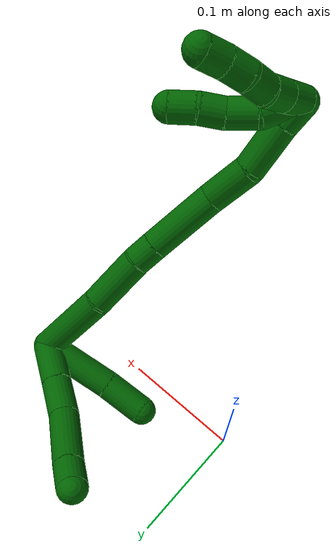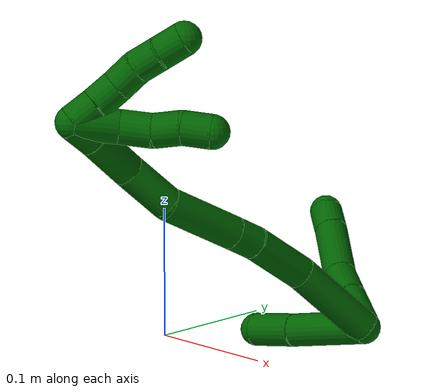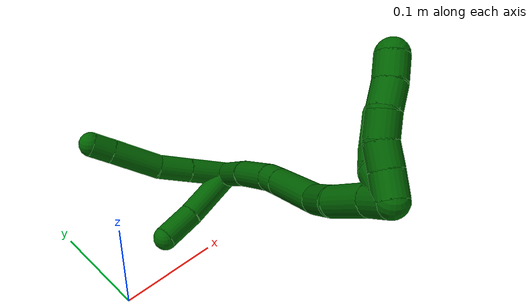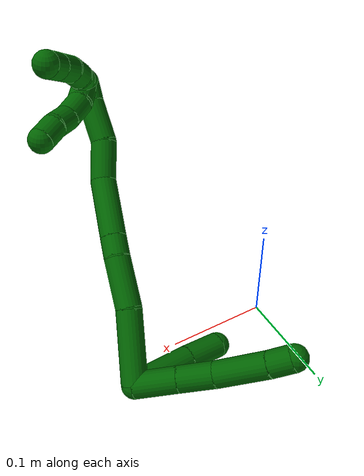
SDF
<sdf version="1.7">
 <world name="default">
  <model name="6">
   <static>0</static>
   <link name="6">
    <collision name="collision-cylinder-e_1_2_8">
     <pose>-0.014084 0.013528 0.007174 -1.0832 -0.743656 0.460877</pose>
     <geometry><cylinder><radius>0.0125</radius><length>0.041609</length></cylinder></geometry>
     <surface>
      <friction><ode><mu>1.16</mu><mu2>1.16</mu2><slip1>0</slip1><slip2>0</slip2></ode></friction>
      <contact><ode><kp>1e+06</kp><kd>1</kd><max_vel>0</max_vel><min_depth>0.001</min_depth></ode></contact>
     </surface>
    </collision>
    <visual name="visual-cylinder-e_1_2_8">
     <pose>-0.014084 0.013528 0.007174 -1.0832 -0.743656 0.460877</pose>
     <geometry><cylinder><radius>0.0125</radius><length>0.041609</length></cylinder></geometry>
     <material><ambient>0 0.392157 0.003922 1</ambient></material>
    </visual>
    <collision name="collision-cylinder-e_2_8_9">
     <pose>-0.039661 0.038265 0.020245 -1.08649 -0.736825 0.458039</pose>
     <geometry><cylinder><radius>0.0125</radius><length>0.034205</length></cylinder></geometry>
     <surface>
      <friction><ode><mu>1.16</mu><mu2>1.16</mu2><slip1>0</slip1><slip2>0</slip2></ode></friction>
      <contact><ode><kp>1e+06</kp><kd>1</kd><max_vel>0</max_vel><min_depth>0.001</min_depth></ode></contact>
     </surface>
    </collision>
    <visual name="visual-cylinder-e_2_8_9">
     <pose>-0.039661 0.038265 0.020245 -1.08649 -0.736825 0.458039</pose>
     <geometry><cylinder><radius>0.0125</radius><length>0.034205</length></cylinder></geometry>
     <material><ambient>0 0.392157 0.003922 1</ambient></material>
    </visual>
    <collision name="collision-cylinder-e_3_9_10">
     <pose>-0.065368 0.066415 0.039417 -0.906129 -0.583714 0.290469</pose>
     <geometry><cylinder><radius>0.0125</radius><length>0.051586</length></cylinder></geometry>
     <surface>
      <friction><ode><mu>1.16</mu><mu2>1.16</mu2><slip1>0</slip1><slip2>0</slip2></ode></friction>
      <contact><ode><kp>1e+06</kp><kd>1</kd><max_vel>0</max_vel><min_depth>0.001</min_depth></ode></contact>
     </surface>
    </collision>
    <visual name="visual-cylinder-e_3_9_10">
     <pose>-0.065368 0.066415 0.039417 -0.906129 -0.583714 0.290469</pose>
     <geometry><cylinder><radius>0.0125</radius><length>0.051586</length></cylinder></geometry>
     <material><ambient>0 0.392157 0.003922 1</ambient></material>
    </visual>
    <collision name="collision-cylinder-e_4_10_6">
     <pose>-0.086105 0.090264 0.058809 -0.846072 -0.615246 0.28415</pose>
     <geometry><cylinder><radius>0.0125</radius><length>0.0226</length></cylinder></geometry>
     <surface>
      <friction><ode><mu>1.16</mu><mu2>1.16</mu2><slip1>0</slip1><slip2>0</slip2></ode></friction>
      <contact><ode><kp>1e+06</kp><kd>1</kd><max_vel>0</max_vel><min_depth>0.001</min_depth></ode></contact>
     </surface>
    </collision>
    <visual name="visual-cylinder-e_4_10_6">
     <pose>-0.086105 0.090264 0.058809 -0.846072 -0.615246 0.28415</pose>
     <geometry><cylinder><radius>0.0125</radius><length>0.0226</length></cylinder></geometry>
     <material><ambient>0 0.392157 0.003922 1</ambient></material>
    </visual>
    <collision name="collision-cylinder-e_1_2_11">
     <pose>-0.031287 0.000875 -0.004205 -2.93636 -1.43436 2.90652</pose>
     <geometry><cylinder><radius>0.0125</radius><length>0.063161</length></cylinder></geometry>
     <surface>
      <friction><ode><mu>1.16</mu><mu2>1.16</mu2><slip1>0</slip1><slip2>0</slip2></ode></friction>
      <contact><ode><kp>1e+06</kp><kd>1</kd><max_vel>0</max_vel><min_depth>0.001</min_depth></ode></contact>
     </surface>
    </collision>
    <visual name="visual-cylinder-e_1_2_11">
     <pose>-0.031287 0.000875 -0.004205 -2.93636 -1.43436 2.90652</pose>
     <geometry><cylinder><radius>0.0125</radius><length>0.063161</length></cylinder></geometry>
     <material><ambient>0 0.392157 0.003922 1</ambient></material>
    </visual>
    <collision name="collision-cylinder-e_2_11_5">
     <pose>-0.080803 0.003681 -0.010216 -2.32265 -1.4268 2.21194</pose>
     <geometry><cylinder><radius>0.0125</radius><length>0.036839</length></cylinder></geometry>
     <surface>
      <friction><ode><mu>1.16</mu><mu2>1.16</mu2><slip1>0</slip1><slip2>0</slip2></ode></friction>
      <contact><ode><kp>1e+06</kp><kd>1</kd><max_vel>0</max_vel><min_depth>0.001</min_depth></ode></contact>
     </surface>
    </collision>
    <visual name="visual-cylinder-e_2_11_5">
     <pose>-0.080803 0.003681 -0.010216 -2.32265 -1.4268 2.21194</pose>
     <geometry><cylinder><radius>0.0125</radius><length>0.036839</length></cylinder></geometry>
     <material><ambient>0 0.392157 0.003922 1</ambient></material>
    </visual>
    <collision name="collision-cylinder-e_1_2_12">
     <pose>-0.013202 -0.022026 0.023243 0.758508 -0.391061 -0.157547</pose>
     <geometry><cylinder><radius>0.0125</radius><length>0.069273</length></cylinder></geometry>
     <surface>
      <friction><ode><mu>1.16</mu><mu2>1.16</mu2><slip1>0</slip1><slip2>0</slip2></ode></friction>
      <contact><ode><kp>1e+06</kp><kd>1</kd><max_vel>0</max_vel><min_depth>0.001</min_depth></ode></contact>
     </surface>
    </collision>
    <visual name="visual-cylinder-e_1_2_12">
     <pose>-0.013202 -0.022026 0.023243 0.758508 -0.391061 -0.157547</pose>
     <geometry><cylinder><radius>0.0125</radius><length>0.069273</length></cylinder></geometry>
     <material><ambient>0 0.392157 0.003922 1</ambient></material>
    </visual>
    <collision name="collision-cylinder-e_2_12_13">
     <pose>-0.033816 -0.062916 0.060269 0.939833 -0.307171 -0.156916</pose>
     <geometry><cylinder><radius>0.0125</radius><length>0.049019</length></cylinder></geometry>
     <surface>
      <friction><ode><mu>1.16</mu><mu2>1.16</mu2><slip1>0</slip1><slip2>0</slip2></ode></friction>
      <contact><ode><kp>1e+06</kp><kd>1</kd><max_vel>0</max_vel><min_depth>0.001</min_depth></ode></contact>
     </surface>
    </collision>
    <visual name="visual-cylinder-e_2_12_13">
     <pose>-0.033816 -0.062916 0.060269 0.939833 -0.307171 -0.156916</pose>
     <geometry><cylinder><radius>0.0125</radius><length>0.049019</length></cylinder></geometry>
     <material><ambient>0 0.392157 0.003922 1</ambient></material>
    </visual>
    <collision name="collision-cylinder-e_3_13_14">
     <pose>-0.045085 -0.089916 0.078757 1.04639 -0.389557 -0.226612</pose>
     <geometry><cylinder><radius>0.0125</radius><length>0.020319</length></cylinder></geometry>
     <surface>
      <friction><ode><mu>1.16</mu><mu2>1.16</mu2><slip1>0</slip1><slip2>0</slip2></ode></friction>
      <contact><ode><kp>1e+06</kp><kd>1</kd><max_vel>0</max_vel><min_depth>0.001</min_depth></ode></contact>
     </surface>
    </collision>
    <visual name="visual-cylinder-e_3_13_14">
     <pose>-0.045085 -0.089916 0.078757 1.04639 -0.389557 -0.226612</pose>
     <geometry><cylinder><radius>0.0125</radius><length>0.020319</length></cylinder></geometry>
     <material><ambient>0 0.392157 0.003922 1</ambient></material>
    </visual>
    <collision name="collision-cylinder-e_4_14_15">
     <pose>-0.060628 -0.12188 0.097021 1.05351 -0.402895 -0.236423</pose>
     <geometry><cylinder><radius>0.0125</radius><length>0.059605</length></cylinder></geometry>
     <surface>
      <friction><ode><mu>1.16</mu><mu2>1.16</mu2><slip1>0</slip1><slip2>0</slip2></ode></friction>
      <contact><ode><kp>1e+06</kp><kd>1</kd><max_vel>0</max_vel><min_depth>0.001</min_depth></ode></contact>
     </surface>
    </collision>
    <visual name="visual-cylinder-e_4_14_15">
     <pose>-0.060628 -0.12188 0.097021 1.05351 -0.402895 -0.236423</pose>
     <geometry><cylinder><radius>0.0125</radius><length>0.059605</length></cylinder></geometry>
     <material><ambient>0 0.392157 0.003922 1</ambient></material>
    </visual>
    <collision name="collision-cylinder-e_5_15_16">
     <pose>-0.080968 -0.157028 0.12372 0.710977 -0.462848 -0.174528</pose>
     <geometry><cylinder><radius>0.0125</radius><length>0.038766</length></cylinder></geometry>
     <surface>
      <friction><ode><mu>1.16</mu><mu2>1.16</mu2><slip1>0</slip1><slip2>0</slip2></ode></friction>
      <contact><ode><kp>1e+06</kp><kd>1</kd><max_vel>0</max_vel><min_depth>0.001</min_depth></ode></contact>
     </surface>
    </collision>
    <visual name="visual-cylinder-e_5_15_16">
     <pose>-0.080968 -0.157028 0.12372 0.710977 -0.462848 -0.174528</pose>
     <geometry><cylinder><radius>0.0125</radius><length>0.038766</length></cylinder></geometry>
     <material><ambient>0 0.392157 0.003922 1</ambient></material>
    </visual>
    <collision name="collision-cylinder-e_6_16_17">
     <pose>-0.093225 -0.183513 0.149885 0.861309 -0.178272 -0.082072</pose>
     <geometry><cylinder><radius>0.0125</radius><length>0.040625</length></cylinder></geometry>
     <surface>
      <friction><ode><mu>1.16</mu><mu2>1.16</mu2><slip1>0</slip1><slip2>0</slip2></ode></friction>
      <contact><ode><kp>1e+06</kp><kd>1</kd><max_vel>0</max_vel><min_depth>0.001</min_depth></ode></contact>
     </surface>
    </collision>
    <visual name="visual-cylinder-e_6_16_17">
     <pose>-0.093225 -0.183513 0.149885 0.861309 -0.178272 -0.082072</pose>
     <geometry><cylinder><radius>0.0125</radius><length>0.040625</length></cylinder></geometry>
     <material><ambient>0 0.392157 0.003922 1</ambient></material>
    </visual>
    <collision name="collision-cylinder-e_7_17_1">
     <pose>-0.099797 -0.206955 0.169838 0.87364 -0.268537 -0.125972</pose>
     <geometry><cylinder><radius>0.0125</radius><length>0.022391</length></cylinder></geometry>
     <surface>
      <friction><ode><mu>1.16</mu><mu2>1.16</mu2><slip1>0</slip1><slip2>0</slip2></ode></friction>
      <contact><ode><kp>1e+06</kp><kd>1</kd><max_vel>0</max_vel><min_depth>0.001</min_depth></ode></contact>
     </surface>
    </collision>
    <visual name="visual-cylinder-e_7_17_1">
     <pose>-0.099797 -0.206955 0.169838 0.87364 -0.268537 -0.125972</pose>
     <geometry><cylinder><radius>0.0125</radius><length>0.022391</length></cylinder></geometry>
     <material><ambient>0 0.392157 0.003922 1</ambient></material>
    </visual>
    <collision name="collision-cylinder-e_1_1_18">
     <pose>-0.090958 -0.20387 0.174527 -1.76564 0.795224 -0.94476</pose>
     <geometry><cylinder><radius>0.0125</radius><length>0.033081</length></cylinder></geometry>
     <surface>
      <friction><ode><mu>1.16</mu><mu2>1.16</mu2><slip1>0</slip1><slip2>0</slip2></ode></friction>
      <contact><ode><kp>1e+06</kp><kd>1</kd><max_vel>0</max_vel><min_depth>0.001</min_depth></ode></contact>
     </surface>
    </collision>
    <visual name="visual-cylinder-e_1_1_18">
     <pose>-0.090958 -0.20387 0.174527 -1.76564 0.795224 -0.94476</pose>
     <geometry><cylinder><radius>0.0125</radius><length>0.033081</length></cylinder></geometry>
     <material><ambient>0 0.392157 0.003922 1</ambient></material>
    </visual>
    <collision name="collision-cylinder-e_2_18_19">
     <pose>-0.068292 -0.187071 0.170679 -1.85789 1.08945 -1.36235</pose>
     <geometry><cylinder><radius>0.0125</radius><length>0.024495</length></cylinder></geometry>
     <surface>
      <friction><ode><mu>1.16</mu><mu2>1.16</mu2><slip1>0</slip1><slip2>0</slip2></ode></friction>
      <contact><ode><kp>1e+06</kp><kd>1</kd><max_vel>0</max_vel><min_depth>0.001</min_depth></ode></contact>
     </surface>
    </collision>
    <visual name="visual-cylinder-e_2_18_19">
     <pose>-0.068292 -0.187071 0.170679 -1.85789 1.08945 -1.36235</pose>
     <geometry><cylinder><radius>0.0125</radius><length>0.024495</length></cylinder></geometry>
     <material><ambient>0 0.392157 0.003922 1</ambient></material>
    </visual>
    <collision name="collision-cylinder-e_3_19_20">
     <pose>-0.047931 -0.177553 0.170197 -1.30199 1.15197 -0.918847</pose>
     <geometry><cylinder><radius>0.0125</radius><length>0.020807</length></cylinder></geometry>
     <surface>
      <friction><ode><mu>1.16</mu><mu2>1.16</mu2><slip1>0</slip1><slip2>0</slip2></ode></friction>
      <contact><ode><kp>1e+06</kp><kd>1</kd><max_vel>0</max_vel><min_depth>0.001</min_depth></ode></contact>
     </surface>
    </collision>
    <visual name="visual-cylinder-e_3_19_20">
     <pose>-0.047931 -0.177553 0.170197 -1.30199 1.15197 -0.918847</pose>
     <geometry><cylinder><radius>0.0125</radius><length>0.020807</length></cylinder></geometry>
     <material><ambient>0 0.392157 0.003922 1</ambient></material>
    </visual>
    <collision name="collision-cylinder-e_4_20_4">
     <pose>-0.028625 -0.169161 0.169861 -1.8971 1.1359 -1.45402</pose>
     <geometry><cylinder><radius>0.0125</radius><length>0.021617</length></cylinder></geometry>
     <surface>
      <friction><ode><mu>1.16</mu><mu2>1.16</mu2><slip1>0</slip1><slip2>0</slip2></ode></friction>
      <contact><ode><kp>1e+06</kp><kd>1</kd><max_vel>0</max_vel><min_depth>0.001</min_depth></ode></contact>
     </surface>
    </collision>
    <visual name="visual-cylinder-e_4_20_4">
     <pose>-0.028625 -0.169161 0.169861 -1.8971 1.1359 -1.45402</pose>
     <geometry><cylinder><radius>0.0125</radius><length>0.021617</length></cylinder></geometry>
     <material><ambient>0 0.392157 0.003922 1</ambient></material>
    </visual>
    <collision name="collision-cylinder-e_1_1_21">
     <pose>-0.0968 -0.209712 0.182594 -0.758444 0.639405 -0.262346</pose>
     <geometry><cylinder><radius>0.0125</radius><length>0.02</length></cylinder></geometry>
     <surface>
      <friction><ode><mu>1.16</mu><mu2>1.16</mu2><slip1>0</slip1><slip2>0</slip2></ode></friction>
      <contact><ode><kp>1e+06</kp><kd>1</kd><max_vel>0</max_vel><min_depth>0.001</min_depth></ode></contact>
     </surface>
    </collision>
    <visual name="visual-cylinder-e_1_1_21">
     <pose>-0.0968 -0.209712 0.182594 -0.758444 0.639405 -0.262346</pose>
     <geometry><cylinder><radius>0.0125</radius><length>0.02</length></cylinder></geometry>
     <material><ambient>0 0.392157 0.003922 1</ambient></material>
    </visual>
    <collision name="collision-cylinder-e_2_21_22">
     <pose>-0.08536 -0.198492 0.194547 -0.749223 0.579131 -0.233224</pose>
     <geometry><cylinder><radius>0.0125</radius><length>0.02</length></cylinder></geometry>
     <surface>
      <friction><ode><mu>1.16</mu><mu2>1.16</mu2><slip1>0</slip1><slip2>0</slip2></ode></friction>
      <contact><ode><kp>1e+06</kp><kd>1</kd><max_vel>0</max_vel><min_depth>0.001</min_depth></ode></contact>
     </surface>
    </collision>
    <visual name="visual-cylinder-e_2_21_22">
     <pose>-0.08536 -0.198492 0.194547 -0.749223 0.579131 -0.233224</pose>
     <geometry><cylinder><radius>0.0125</radius><length>0.02</length></cylinder></geometry>
     <material><ambient>0 0.392157 0.003922 1</ambient></material>
    </visual>
    <collision name="collision-cylinder-e_3_22_23">
     <pose>-0.073189 -0.189635 0.207395 -0.439215 0.734024 -0.171196</pose>
     <geometry><cylinder><radius>0.0125</radius><length>0.02</length></cylinder></geometry>
     <surface>
      <friction><ode><mu>1.16</mu><mu2>1.16</mu2><slip1>0</slip1><slip2>0</slip2></ode></friction>
      <contact><ode><kp>1e+06</kp><kd>1</kd><max_vel>0</max_vel><min_depth>0.001</min_depth></ode></contact>
     </surface>
    </collision>
    <visual name="visual-cylinder-e_3_22_23">
     <pose>-0.073189 -0.189635 0.207395 -0.439215 0.734024 -0.171196</pose>
     <geometry><cylinder><radius>0.0125</radius><length>0.02</length></cylinder></geometry>
     <material><ambient>0 0.392157 0.003922 1</ambient></material>
    </visual>
    <collision name="collision-cylinder-e_4_23_24">
     <pose>-0.058243 -0.183827 0.219111 -0.487815 0.969729 -0.260719</pose>
     <geometry><cylinder><radius>0.0125</radius><length>0.02</length></cylinder></geometry>
     <surface>
      <friction><ode><mu>1.16</mu><mu2>1.16</mu2><slip1>0</slip1><slip2>0</slip2></ode></friction>
      <contact><ode><kp>1e+06</kp><kd>1</kd><max_vel>0</max_vel><min_depth>0.001</min_depth></ode></contact>
     </surface>
    </collision>
    <visual name="visual-cylinder-e_4_23_24">
     <pose>-0.058243 -0.183827 0.219111 -0.487815 0.969729 -0.260719</pose>
     <geometry><cylinder><radius>0.0125</radius><length>0.02</length></cylinder></geometry>
     <material><ambient>0 0.392157 0.003922 1</ambient></material>
    </visual>
    <collision name="collision-cylinder-e_5_24_3">
     <pose>-0.042219 -0.177407 0.229139 -0.642878 0.890846 -0.315312</pose>
     <geometry><cylinder><radius>0.0125</radius><length>0.02</length></cylinder></geometry>
     <surface>
      <friction><ode><mu>1.16</mu><mu2>1.16</mu2><slip1>0</slip1><slip2>0</slip2></ode></friction>
      <contact><ode><kp>1e+06</kp><kd>1</kd><max_vel>0</max_vel><min_depth>0.001</min_depth></ode></contact>
     </surface>
    </collision>
    <visual name="visual-cylinder-e_5_24_3">
     <pose>-0.042219 -0.177407 0.229139 -0.642878 0.890846 -0.315312</pose>
     <geometry><cylinder><radius>0.0125</radius><length>0.02</length></cylinder></geometry>
     <material><ambient>0 0.392157 0.003922 1</ambient></material>
    </visual>
    <collision name="collision-sphere-3">
     <pose>-0.034443 -0.173638 0.234171 0 -0 0</pose>
     <geometry><sphere><radius>0.0125</radius></sphere></geometry>
     <surface>
      <friction><ode><mu>1.16</mu><mu2>1.16</mu2><slip1>0</slip1><slip2>0</slip2></ode></friction>
      <contact><ode><kp>1e+06</kp><kd>1</kd><max_vel>0</max_vel><min_depth>0.001</min_depth></ode></contact>
     </surface>
    </collision>
    <visual name="visual-sphere-3">
     <pose>-0.034443 -0.173638 0.234171 0 -0 0</pose>
     <geometry><sphere><radius>0.0125</radius></sphere></geometry>
     <material><ambient>0 0.392157 0.003922 1</ambient></material>
    </visual>
    <collision name="collision-sphere-24">
     <pose>-0.049995 -0.181177 0.224107 0 -0 0</pose>
     <geometry><sphere><radius>0.0125</radius></sphere></geometry>
     <surface>
      <friction><ode><mu>1.16</mu><mu2>1.16</mu2><slip1>0</slip1><slip2>0</slip2></ode></friction>
      <contact><ode><kp>1e+06</kp><kd>1</kd><max_vel>0</max_vel><min_depth>0.001</min_depth></ode></contact>
     </surface>
    </collision>
    <visual name="visual-sphere-24">
     <pose>-0.049995 -0.181177 0.224107 0 -0 0</pose>
     <geometry><sphere><radius>0.0125</radius></sphere></geometry>
     <material><ambient>0 0.392157 0.003922 1</ambient></material>
    </visual>
    <collision name="collision-sphere-23">
     <pose>-0.06649 -0.186478 0.214115 0 -0 0</pose>
     <geometry><sphere><radius>0.0125</radius></sphere></geometry>
     <surface>
      <friction><ode><mu>1.16</mu><mu2>1.16</mu2><slip1>0</slip1><slip2>0</slip2></ode></friction>
      <contact><ode><kp>1e+06</kp><kd>1</kd><max_vel>0</max_vel><min_depth>0.001</min_depth></ode></contact>
     </surface>
    </collision>
    <visual name="visual-sphere-23">
     <pose>-0.06649 -0.186478 0.214115 0 -0 0</pose>
     <geometry><sphere><radius>0.0125</radius></sphere></geometry>
     <material><ambient>0 0.392157 0.003922 1</ambient></material>
    </visual>
    <collision name="collision-sphere-22">
     <pose>-0.079887 -0.192792 0.200675 0 -0 0</pose>
     <geometry><sphere><radius>0.0125</radius></sphere></geometry>
     <surface>
      <friction><ode><mu>1.16</mu><mu2>1.16</mu2><slip1>0</slip1><slip2>0</slip2></ode></friction>
      <contact><ode><kp>1e+06</kp><kd>1</kd><max_vel>0</max_vel><min_depth>0.001</min_depth></ode></contact>
     </surface>
    </collision>
    <visual name="visual-sphere-22">
     <pose>-0.079887 -0.192792 0.200675 0 -0 0</pose>
     <geometry><sphere><radius>0.0125</radius></sphere></geometry>
     <material><ambient>0 0.392157 0.003922 1</ambient></material>
    </visual>
    <collision name="collision-sphere-21">
     <pose>-0.090833 -0.204193 0.188419 0 -0 0</pose>
     <geometry><sphere><radius>0.0125</radius></sphere></geometry>
     <surface>
      <friction><ode><mu>1.16</mu><mu2>1.16</mu2><slip1>0</slip1><slip2>0</slip2></ode></friction>
      <contact><ode><kp>1e+06</kp><kd>1</kd><max_vel>0</max_vel><min_depth>0.001</min_depth></ode></contact>
     </surface>
    </collision>
    <visual name="visual-sphere-21">
     <pose>-0.090833 -0.204193 0.188419 0 -0 0</pose>
     <geometry><sphere><radius>0.0125</radius></sphere></geometry>
     <material><ambient>0 0.392157 0.003922 1</ambient></material>
    </visual>
    <collision name="collision-sphere-4">
     <pose>-0.018822 -0.164847 0.168401 0 -0 0</pose>
     <geometry><sphere><radius>0.0125</radius></sphere></geometry>
     <surface>
      <friction><ode><mu>1.16</mu><mu2>1.16</mu2><slip1>0</slip1><slip2>0</slip2></ode></friction>
      <contact><ode><kp>1e+06</kp><kd>1</kd><max_vel>0</max_vel><min_depth>0.001</min_depth></ode></contact>
     </surface>
    </collision>
    <visual name="visual-sphere-4">
     <pose>-0.018822 -0.164847 0.168401 0 -0 0</pose>
     <geometry><sphere><radius>0.0125</radius></sphere></geometry>
     <material><ambient>0 0.392157 0.003922 1</ambient></material>
    </visual>
    <collision name="collision-sphere-20">
     <pose>-0.038427 -0.173474 0.171321 0 -0 0</pose>
     <geometry><sphere><radius>0.0125</radius></sphere></geometry>
     <surface>
      <friction><ode><mu>1.16</mu><mu2>1.16</mu2><slip1>0</slip1><slip2>0</slip2></ode></friction>
      <contact><ode><kp>1e+06</kp><kd>1</kd><max_vel>0</max_vel><min_depth>0.001</min_depth></ode></contact>
     </surface>
    </collision>
    <visual name="visual-sphere-20">
     <pose>-0.038427 -0.173474 0.171321 0 -0 0</pose>
     <geometry><sphere><radius>0.0125</radius></sphere></geometry>
     <material><ambient>0 0.392157 0.003922 1</ambient></material>
    </visual>
    <collision name="collision-sphere-11">
     <pose>-0.062574 0.001751 -0.008411 0 -0 0</pose>
     <geometry><sphere><radius>0.0125</radius></sphere></geometry>
     <surface>
      <friction><ode><mu>1.16</mu><mu2>1.16</mu2><slip1>0</slip1><slip2>0</slip2></ode></friction>
      <contact><ode><kp>1e+06</kp><kd>1</kd><max_vel>0</max_vel><min_depth>0.001</min_depth></ode></contact>
     </surface>
    </collision>
    <visual name="visual-sphere-11">
     <pose>-0.062574 0.001751 -0.008411 0 -0 0</pose>
     <geometry><sphere><radius>0.0125</radius></sphere></geometry>
     <material><ambient>0 0.392157 0.003922 1</ambient></material>
    </visual>
    <collision name="collision-sphere-6">
     <pose>-0.092627 0.097173 0.064927 0 -0 0</pose>
     <geometry><sphere><radius>0.0125</radius></sphere></geometry>
     <surface>
      <friction><ode><mu>1.16</mu><mu2>1.16</mu2><slip1>0</slip1><slip2>0</slip2></ode></friction>
      <contact><ode><kp>1e+06</kp><kd>1</kd><max_vel>0</max_vel><min_depth>0.001</min_depth></ode></contact>
     </surface>
    </collision>
    <visual name="visual-sphere-6">
     <pose>-0.092627 0.097173 0.064927 0 -0 0</pose>
     <geometry><sphere><radius>0.0125</radius></sphere></geometry>
     <material><ambient>0 0.392157 0.003922 1</ambient></material>
    </visual>
    <collision name="collision-sphere-10">
     <pose>-0.079583 0.083356 0.052692 0 -0 0</pose>
     <geometry><sphere><radius>0.0125</radius></sphere></geometry>
     <surface>
      <friction><ode><mu>1.16</mu><mu2>1.16</mu2><slip1>0</slip1><slip2>0</slip2></ode></friction>
      <contact><ode><kp>1e+06</kp><kd>1</kd><max_vel>0</max_vel><min_depth>0.001</min_depth></ode></contact>
     </surface>
    </collision>
    <visual name="visual-sphere-10">
     <pose>-0.079583 0.083356 0.052692 0 -0 0</pose>
     <geometry><sphere><radius>0.0125</radius></sphere></geometry>
     <material><ambient>0 0.392157 0.003922 1</ambient></material>
    </visual>
    <collision name="collision-sphere-9">
     <pose>-0.051153 0.049475 0.026142 0 -0 0</pose>
     <geometry><sphere><radius>0.0125</radius></sphere></geometry>
     <surface>
      <friction><ode><mu>1.16</mu><mu2>1.16</mu2><slip1>0</slip1><slip2>0</slip2></ode></friction>
      <contact><ode><kp>1e+06</kp><kd>1</kd><max_vel>0</max_vel><min_depth>0.001</min_depth></ode></contact>
     </surface>
    </collision>
    <visual name="visual-sphere-9">
     <pose>-0.051153 0.049475 0.026142 0 -0 0</pose>
     <geometry><sphere><radius>0.0125</radius></sphere></geometry>
     <material><ambient>0 0.392157 0.003922 1</ambient></material>
    </visual>
    <collision name="collision-sphere-2">
     <geometry><sphere><radius>0.0125</radius></sphere></geometry>
     <surface>
      <friction><ode><mu>1.16</mu><mu2>1.16</mu2><slip1>0</slip1><slip2>0</slip2></ode></friction>
      <contact><ode><kp>1e+06</kp><kd>1</kd><max_vel>0</max_vel><min_depth>0.001</min_depth></ode></contact>
     </surface>
    </collision>
    <visual name="visual-sphere-2">
     <geometry><sphere><radius>0.0125</radius></sphere></geometry>
     <material><ambient>0 0.392157 0.003922 1</ambient></material>
    </visual>
    <collision name="collision-sphere-19">
     <pose>-0.057436 -0.181632 0.169073 0 -0 0</pose>
     <geometry><sphere><radius>0.0125</radius></sphere></geometry>
     <surface>
      <friction><ode><mu>1.16</mu><mu2>1.16</mu2><slip1>0</slip1><slip2>0</slip2></ode></friction>
      <contact><ode><kp>1e+06</kp><kd>1</kd><max_vel>0</max_vel><min_depth>0.001</min_depth></ode></contact>
     </surface>
    </collision>
    <visual name="visual-sphere-19">
     <pose>-0.057436 -0.181632 0.169073 0 -0 0</pose>
     <geometry><sphere><radius>0.0125</radius></sphere></geometry>
     <material><ambient>0 0.392157 0.003922 1</ambient></material>
    </visual>
    <collision name="collision-sphere-8">
     <pose>-0.028169 0.027055 0.014348 0 -0 0</pose>
     <geometry><sphere><radius>0.0125</radius></sphere></geometry>
     <surface>
      <friction><ode><mu>1.16</mu><mu2>1.16</mu2><slip1>0</slip1><slip2>0</slip2></ode></friction>
      <contact><ode><kp>1e+06</kp><kd>1</kd><max_vel>0</max_vel><min_depth>0.001</min_depth></ode></contact>
     </surface>
    </collision>
    <visual name="visual-sphere-8">
     <pose>-0.028169 0.027055 0.014348 0 -0 0</pose>
     <geometry><sphere><radius>0.0125</radius></sphere></geometry>
     <material><ambient>0 0.392157 0.003922 1</ambient></material>
    </visual>
    <collision name="collision-sphere-5">
     <pose>-0.099032 0.005612 -0.012021 0 -0 0</pose>
     <geometry><sphere><radius>0.0125</radius></sphere></geometry>
     <surface>
      <friction><ode><mu>1.16</mu><mu2>1.16</mu2><slip1>0</slip1><slip2>0</slip2></ode></friction>
      <contact><ode><kp>1e+06</kp><kd>1</kd><max_vel>0</max_vel><min_depth>0.001</min_depth></ode></contact>
     </surface>
    </collision>
    <visual name="visual-sphere-5">
     <pose>-0.099032 0.005612 -0.012021 0 -0 0</pose>
     <geometry><sphere><radius>0.0125</radius></sphere></geometry>
     <material><ambient>0 0.392157 0.003922 1</ambient></material>
    </visual>
    <collision name="collision-sphere-12">
     <pose>-0.026405 -0.044051 0.046487 0 -0 0</pose>
     <geometry><sphere><radius>0.0125</radius></sphere></geometry>
     <surface>
      <friction><ode><mu>1.16</mu><mu2>1.16</mu2><slip1>0</slip1><slip2>0</slip2></ode></friction>
      <contact><ode><kp>1e+06</kp><kd>1</kd><max_vel>0</max_vel><min_depth>0.001</min_depth></ode></contact>
     </surface>
    </collision>
    <visual name="visual-sphere-12">
     <pose>-0.026405 -0.044051 0.046487 0 -0 0</pose>
     <geometry><sphere><radius>0.0125</radius></sphere></geometry>
     <material><ambient>0 0.392157 0.003922 1</ambient></material>
    </visual>
    <collision name="collision-sphere-13">
     <pose>-0.041226 -0.08178 0.074051 0 -0 0</pose>
     <geometry><sphere><radius>0.0125</radius></sphere></geometry>
     <surface>
      <friction><ode><mu>1.16</mu><mu2>1.16</mu2><slip1>0</slip1><slip2>0</slip2></ode></friction>
      <contact><ode><kp>1e+06</kp><kd>1</kd><max_vel>0</max_vel><min_depth>0.001</min_depth></ode></contact>
     </surface>
    </collision>
    <visual name="visual-sphere-13">
     <pose>-0.041226 -0.08178 0.074051 0 -0 0</pose>
     <geometry><sphere><radius>0.0125</radius></sphere></geometry>
     <material><ambient>0 0.392157 0.003922 1</ambient></material>
    </visual>
    <collision name="collision-sphere-14">
     <pose>-0.048943 -0.098051 0.083462 0 -0 0</pose>
     <geometry><sphere><radius>0.0125</radius></sphere></geometry>
     <surface>
      <friction><ode><mu>1.16</mu><mu2>1.16</mu2><slip1>0</slip1><slip2>0</slip2></ode></friction>
      <contact><ode><kp>1e+06</kp><kd>1</kd><max_vel>0</max_vel><min_depth>0.001</min_depth></ode></contact>
     </surface>
    </collision>
    <visual name="visual-sphere-14">
     <pose>-0.048943 -0.098051 0.083462 0 -0 0</pose>
     <geometry><sphere><radius>0.0125</radius></sphere></geometry>
     <material><ambient>0 0.392157 0.003922 1</ambient></material>
    </visual>
    <collision name="collision-sphere-15">
     <pose>-0.072314 -0.14571 0.110579 0 -0 0</pose>
     <geometry><sphere><radius>0.0125</radius></sphere></geometry>
     <surface>
      <friction><ode><mu>1.16</mu><mu2>1.16</mu2><slip1>0</slip1><slip2>0</slip2></ode></friction>
      <contact><ode><kp>1e+06</kp><kd>1</kd><max_vel>0</max_vel><min_depth>0.001</min_depth></ode></contact>
     </surface>
    </collision>
    <visual name="visual-sphere-15">
     <pose>-0.072314 -0.14571 0.110579 0 -0 0</pose>
     <geometry><sphere><radius>0.0125</radius></sphere></geometry>
     <material><ambient>0 0.392157 0.003922 1</ambient></material>
    </visual>
    <collision name="collision-sphere-16">
     <pose>-0.089623 -0.168346 0.136862 0 -0 0</pose>
     <geometry><sphere><radius>0.0125</radius></sphere></geometry>
     <surface>
      <friction><ode><mu>1.16</mu><mu2>1.16</mu2><slip1>0</slip1><slip2>0</slip2></ode></friction>
      <contact><ode><kp>1e+06</kp><kd>1</kd><max_vel>0</max_vel><min_depth>0.001</min_depth></ode></contact>
     </surface>
    </collision>
    <visual name="visual-sphere-16">
     <pose>-0.089623 -0.168346 0.136862 0 -0 0</pose>
     <geometry><sphere><radius>0.0125</radius></sphere></geometry>
     <material><ambient>0 0.392157 0.003922 1</ambient></material>
    </visual>
    <collision name="collision-sphere-17">
     <pose>-0.096827 -0.19868 0.162908 0 -0 0</pose>
     <geometry><sphere><radius>0.0125</radius></sphere></geometry>
     <surface>
      <friction><ode><mu>1.16</mu><mu2>1.16</mu2><slip1>0</slip1><slip2>0</slip2></ode></friction>
      <contact><ode><kp>1e+06</kp><kd>1</kd><max_vel>0</max_vel><min_depth>0.001</min_depth></ode></contact>
     </surface>
    </collision>
    <visual name="visual-sphere-17">
     <pose>-0.096827 -0.19868 0.162908 0 -0 0</pose>
     <geometry><sphere><radius>0.0125</radius></sphere></geometry>
     <material><ambient>0 0.392157 0.003922 1</ambient></material>
    </visual>
    <collision name="collision-sphere-1">
     <pose>-0.102768 -0.215231 0.176769 0 -0 0</pose>
     <geometry><sphere><radius>0.0125</radius></sphere></geometry>
     <surface>
      <friction><ode><mu>1.16</mu><mu2>1.16</mu2><slip1>0</slip1><slip2>0</slip2></ode></friction>
      <contact><ode><kp>1e+06</kp><kd>1</kd><max_vel>0</max_vel><min_depth>0.001</min_depth></ode></contact>
     </surface>
    </collision>
    <visual name="visual-sphere-1">
     <pose>-0.102768 -0.215231 0.176769 0 -0 0</pose>
     <geometry><sphere><radius>0.0125</radius></sphere></geometry>
     <material><ambient>0 0.392157 0.003922 1</ambient></material>
    </visual>
    <collision name="collision-sphere-18">
     <pose>-0.079147 -0.192509 0.172285 0 -0 0</pose>
     <geometry><sphere><radius>0.0125</radius></sphere></geometry>
     <surface>
      <friction><ode><mu>1.16</mu><mu2>1.16</mu2><slip1>0</slip1><slip2>0</slip2></ode></friction>
      <contact><ode><kp>1e+06</kp><kd>1</kd><max_vel>0</max_vel><min_depth>0.001</min_depth></ode></contact>
     </surface>
    </collision>
    <visual name="visual-sphere-18">
     <pose>-0.079147 -0.192509 0.172285 0 -0 0</pose>
     <geometry><sphere><radius>0.0125</radius></sphere></geometry>
     <material><ambient>0 0.392157 0.003922 1</ambient></material>
    </visual>
    <inertial>
     <pose>-0.055854 -0.082945 0.090894 0 -0 0</pose>
     <mass>0.75</mass>
     <inertia>
      <ixx>7.6e-05</ixx>
      <ixy>0</ixy>
      <ixz>0</ixz>
      <iyy>0.000104</iyy>
      <iyz>0</iyz>
      <izz>0.000111</izz>
     </inertia>
    </inertial>
   </link>
   <pose>0.166943 0.044143 0.030378 -0.039054 -0.056959 0.197092</pose>
  </model>
 </world>
</sdf>
